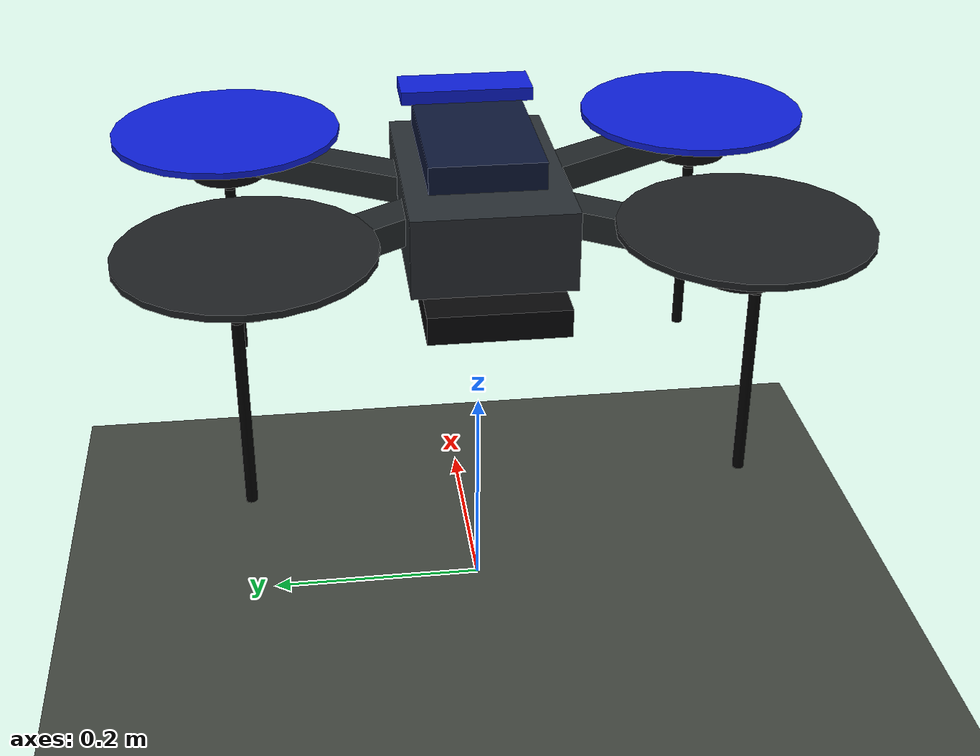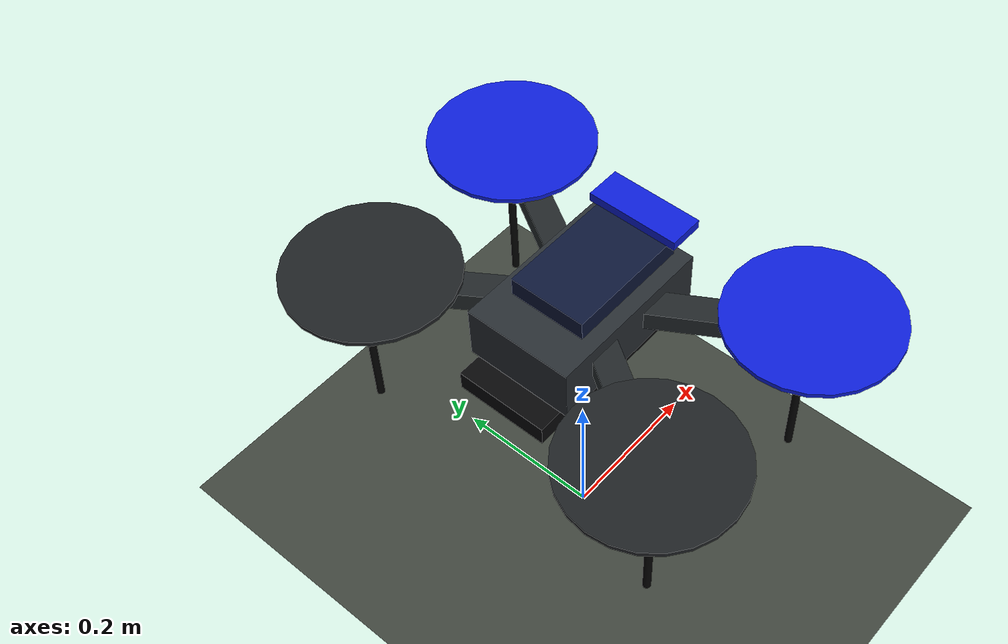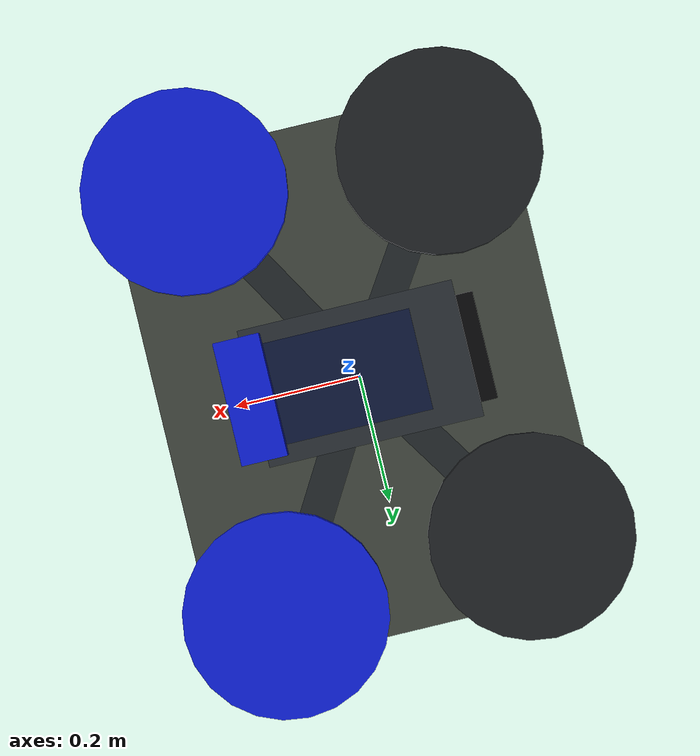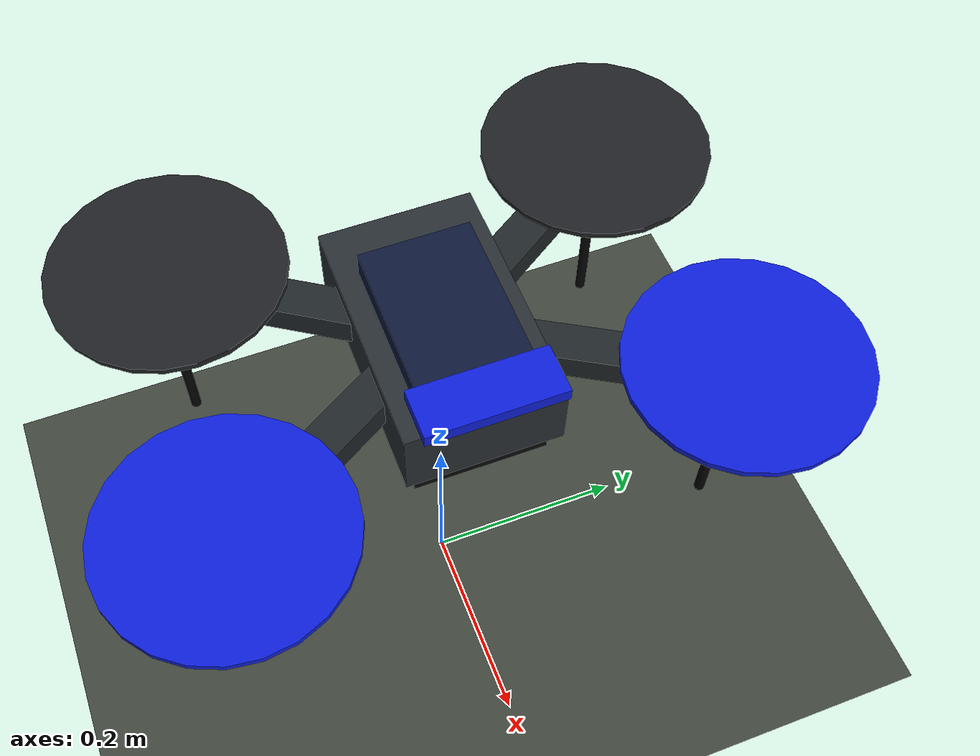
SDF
<?xml version="1.0"?>
<sdf version="1.11">
  <world name="drone_demo">
    <plugin filename="gz-sim-physics-system" name="gz::sim::systems::Physics" />
    <plugin filename="gz-sim-user-commands-system" name="gz::sim::systems::UserCommands" />
    <plugin filename="gz-sim-scene-broadcaster-system" name="gz::sim::systems::SceneBroadcaster" />
    <light name="sun" type="directional">
      <pose relative_to="world">0 0 5 0 0 0</pose>
      <cast_shadows>true</cast_shadows>
      <intensity>0.8</intensity>
      <direction>-0.5 0.1 -0.9</direction>
      <diffuse>0.8 0.8 0.8 1</diffuse>
      <specular>0.2 0.2 0.2 1</specular>
    </light>
    <model name="demo_ground">
      <static>true</static>
      <pose relative_to="world">0 0 0 0 0 0</pose>
      <link name="ground_link">
        <collision name="ground_collision">
          <geometry>
            <plane>
              <normal>0 0 1</normal>
              <size>8.0 6.0</size>
            </plane>
          </geometry>
        </collision>
        <visual name="ground_visual">
          <geometry>
            <plane>
              <normal>0 0 1</normal>
              <size>8.0 6.0</size>
            </plane>
          </geometry>
          <material>
            <ambient>0.25 0.27 0.24 1</ambient>
            <diffuse>0.25 0.27 0.24 1</diffuse>
          </material>
        </visual>
      </link>
    </model>
    <include>
      <name>iris_reference</name>
      <uri>model://iris_with_standoffs</uri>
      <pose relative_to="world">0 0 0.4 0 0 0</pose>
      <static>true</static>
    </include>
  </world>
</sdf>

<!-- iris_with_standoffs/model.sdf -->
<sdf version="1.6">
    <model name="iris">
        <pose>0 0 0.194923 0 0 0</pose>
        <link name="base_link">
            <velocity_decay>
                <linear>0.0</linear>
                <angular>0.0</angular>
            </velocity_decay>
            <inertial>
                <pose>0 0 0 0 0 0</pose>
                <mass>1.5</mass>
                <inertia>
                    <ixx>0.008</ixx>
                    <ixy>0</ixy>
                    <ixz>0</ixz>
                    <iyy>0.015</iyy>
                    <iyz>0</iyz>
                    <izz>0.017</izz>
                </inertia>
            </inertial>
            <collision name="base_link_collision">
                <pose>0 0 -0.08 0 0 0</pose>
                <geometry>
                    <box>
                        <size>0.47 0.47 0.23</size>
                    </box>
                </geometry>
                <surface>
                    <contact>
                        <ode>
                            <max_vel>100.0</max_vel>
                            <min_depth>0.001</min_depth>
                        </ode>
                    </contact>
                    <friction>
                        <ode>
                            <mu>1.0</mu>
                            <mu2>1.0</mu2>
                        </ode>
                    </friction>
                </surface>
            </collision>
            <visual name="body_visual">
                <pose>0 0 0.005 0 0 0</pose>
                <geometry>
                    <box>
                        <size>0.22 0.14 0.07</size>
                    </box>
                </geometry>
                <material>
                    <ambient>0.16 0.18 0.20 1</ambient>
                    <diffuse>0.16 0.18 0.20 1</diffuse>
                    <specular>0.18 0.18 0.18 1</specular>
                </material>
            </visual>
            <visual name="upper_deck_visual">
                <pose>0.02 0 0.052 0 0 0</pose>
                <geometry>
                    <box>
                        <size>0.16 0.10 0.025</size>
                    </box>
                </geometry>
                <material>
                    <ambient>0.05 0.09 0.22 1</ambient>
                    <diffuse>0.05 0.09 0.22 1</diffuse>
                    <specular>0.18 0.18 0.18 1</specular>
                </material>
            </visual>
            <visual name="battery_tray_visual">
                <pose>-0.02 0 -0.044 0 0 0</pose>
                <geometry>
                    <box>
                        <size>0.24 0.12 0.025</size>
                    </box>
                </geometry>
                <material>
                    <ambient>0.03 0.03 0.035 1</ambient>
                    <diffuse>0.03 0.03 0.035 1</diffuse>
                    <specular>0.08 0.08 0.08 1</specular>
                </material>
            </visual>
            <visual name="front_marker_visual">
                <pose>0.108 0 0.07 0 0 0</pose>
                <geometry>
                    <box>
                        <size>0.045 0.12 0.012</size>
                    </box>
                </geometry>
                <material>
                    <ambient>0.05 0.12 0.85 1</ambient>
                    <diffuse>0.05 0.12 0.85 1</diffuse>
                    <specular>0.25 0.25 0.25 1</specular>
                </material>
            </visual>
            <visual name="front_left_arm_visual">
                <pose>0.065 0.11 0.01 0 0 1.0371</pose>
                <geometry>
                    <box>
                        <size>0.30 0.035 0.025</size>
                    </box>
                </geometry>
                <material>
                    <ambient>0.13 0.15 0.16 1</ambient>
                    <diffuse>0.13 0.15 0.16 1</diffuse>
                    <specular>0.12 0.12 0.12 1</specular>
                </material>
            </visual>
            <visual name="front_right_arm_visual">
                <pose>0.065 -0.11 0.01 0 0 -1.0371</pose>
                <geometry>
                    <box>
                        <size>0.30 0.035 0.025</size>
                    </box>
                </geometry>
                <material>
                    <ambient>0.13 0.15 0.16 1</ambient>
                    <diffuse>0.13 0.15 0.16 1</diffuse>
                    <specular>0.12 0.12 0.12 1</specular>
                </material>
            </visual>
            <visual name="rear_left_arm_visual">
                <pose>-0.065 0.10 0.01 0 0 2.1472</pose>
                <geometry>
                    <box>
                        <size>0.29 0.035 0.025</size>
                    </box>
                </geometry>
                <material>
                    <ambient>0.13 0.15 0.16 1</ambient>
                    <diffuse>0.13 0.15 0.16 1</diffuse>
                    <specular>0.12 0.12 0.12 1</specular>
                </material>
            </visual>
            <visual name="rear_right_arm_visual">
                <pose>-0.065 -0.10 0.01 0 0 -2.1472</pose>
                <geometry>
                    <box>
                        <size>0.29 0.035 0.025</size>
                    </box>
                </geometry>
                <material>
                    <ambient>0.13 0.15 0.16 1</ambient>
                    <diffuse>0.13 0.15 0.16 1</diffuse>
                    <specular>0.12 0.12 0.12 1</specular>
                </material>
            </visual>
            <visual name="front_left_leg_visual">
                <pose>0.123 0.22 -0.11 0 0 0</pose>
                <geometry>
                    <cylinder>
                        <radius>0.005</radius>
                        <length>0.17</length>
                    </cylinder>
                </geometry>
                <material>
                    <ambient>0.01 0.01 0.01 1</ambient>
                    <diffuse>0.01 0.01 0.01 1</diffuse>
                    <specular>0.05 0.05 0.05 1</specular>
                </material>
            </visual>
            <visual name="front_right_leg_visual">
                <pose>0.123 -0.22 -0.11 0 0 0</pose>
                <geometry>
                    <cylinder>
                        <radius>0.005</radius>
                        <length>0.17</length>
                    </cylinder>
                </geometry>
                <material>
                    <ambient>0.01 0.01 0.01 1</ambient>
                    <diffuse>0.01 0.01 0.01 1</diffuse>
                    <specular>0.05 0.05 0.05 1</specular>
                </material>
            </visual>
            <visual name="rear_left_leg_visual">
                <pose>-0.140 0.21 -0.11 0 0 0</pose>
                <geometry>
                    <cylinder>
                        <radius>0.005</radius>
                        <length>0.17</length>
                    </cylinder>
                </geometry>
                <material>
                    <ambient>0.01 0.01 0.01 1</ambient>
                    <diffuse>0.01 0.01 0.01 1</diffuse>
                    <specular>0.05 0.05 0.05 1</specular>
                </material>
            </visual>
            <visual name="rear_right_leg_visual">
                <pose>-0.140 -0.21 -0.11 0 0 0</pose>
                <geometry>
                    <cylinder>
                        <radius>0.005</radius>
                        <length>0.17</length>
                    </cylinder>
                </geometry>
                <material>
                    <ambient>0.01 0.01 0.01 1</ambient>
                    <diffuse>0.01 0.01 0.01 1</diffuse>
                    <specular>0.05 0.05 0.05 1</specular>
                </material>
            </visual>
        </link>
        <link name="iris/ground_truth/odometry_sensorgt_link">
            <pose>0 0 0 0 -0 0</pose>
            <inertial>
                <pose>0 0 0 0 -0 0</pose>
                <mass>0.15</mass>
                <inertia>
                    <ixx>0.0001</ixx>
                    <ixy>0</ixy>
                    <ixz>0</ixz>
                    <iyy>0.0002</iyy>
                    <iyz>0</iyz>
                    <izz>0.0002</izz>
                </inertia>
            </inertial>
        </link>
        <joint name="iris/ground_truth/odometry_sensorgt_joint" type="revolute">
            <child>iris/ground_truth/odometry_sensorgt_link</child>
            <parent>base_link</parent>
            <axis>
                <xyz>0 0 1</xyz>
                <limit>
                    <lower>0</lower>
                    <upper>0</upper>
                    <effort>0</effort>
                    <velocity>0</velocity>
                </limit>
                <dynamics>
                    <damping>1.0</damping>
                </dynamics>
                <use_parent_model_frame>1</use_parent_model_frame>
            </axis>
            <physics>
                <ode>
                    <implicit_spring_damper>1</implicit_spring_damper>
                </ode>
            </physics>
        </joint>
        <link name="iris/imu_link">
            <inertial>
                <pose>0 0 0 0 0 0</pose>
                <mass>0.15</mass>
                <inertia>
                    <ixx>0.00001</ixx>
                    <ixy>0</ixy>
                    <ixz>0</ixz>
                    <iyy>0.00002</iyy>
                    <iyz>0</iyz>
                    <izz>0.00002</izz>
                </inertia>
            </inertial>
            <sensor name="imu_sensor" type="imu">
                <pose>0 0 0 3.141593 0 0</pose>
                <always_on>1</always_on>
                <update_rate>1000.0</update_rate>
            </sensor>
        </link>
        <joint name="iris/imu_joint" type="revolute">
            <child>iris/imu_link</child>
            <parent>base_link</parent>
            <axis>
                <xyz>0 0 1</xyz>
                <limit>
                    <lower>0</lower>
                    <upper>0</upper>
                    <effort>0</effort>
                    <velocity>0</velocity>
                </limit>
                <dynamics>
                    <damping>1.0</damping>
                </dynamics>
                <use_parent_model_frame>1</use_parent_model_frame>
            </axis>
            <physics>
                <ode>
                    <implicit_spring_damper>1</implicit_spring_damper>
                </ode>
            </physics>
        </joint>
        <link name="rotor_0">
            <pose>0.13 -0.22 0.023 0 -0 0</pose>
            <inertial>
                <pose>0 0 0 0 -0 0</pose>
                <mass>0.025</mass>
                <inertia>
                    <ixx>9.75e-06</ixx>
                    <ixy>0</ixy>
                    <ixz>0</ixz>
                    <iyy>0.000166704</iyy>
                    <iyz>0</iyz>
                    <izz>0.000167604</izz>
                </inertia>
            </inertial>
            <collision name="rotor_0_collision">
                <pose>0 0 0 0 -0 0</pose>
                <geometry>
                    <cylinder>
                        <length>0.005</length>
                        <radius>0.1</radius>
                    </cylinder>
                </geometry>
                <surface>
                    <contact>
                        <ode/>
                    </contact>
                    <friction>
                        <ode/>
                    </friction>
                </surface>
            </collision>
            <visual name="rotor_0_motor_visual">
                <pose>0 0 -0.018 0 0 0</pose>
                <geometry>
                    <cylinder>
                        <radius>0.035</radius>
                        <length>0.035</length>
                    </cylinder>
                </geometry>
                <material>
                    <ambient>0.05 0.05 0.055 1</ambient>
                    <diffuse>0.05 0.05 0.055 1</diffuse>
                    <specular>0.12 0.12 0.12 1</specular>
                </material>
            </visual>
            <visual name="rotor_0_prop_visual">
                <pose>0 0 0.006 0 0 0</pose>
                <geometry>
                    <cylinder>
                        <radius>0.105</radius>
                        <length>0.006</length>
                    </cylinder>
                </geometry>
                <material>
                    <ambient>0.05 0.12 0.85 1</ambient>
                    <diffuse>0.05 0.12 0.85 1</diffuse>
                    <specular>0.22 0.22 0.22 1</specular>
                </material>
            </visual>
            <gravity>1</gravity>
            <velocity_decay/>
            <self_collide>0</self_collide>
        </link>
        <joint name="rotor_0_joint" type="revolute">
            <child>rotor_0</child>
            <parent>base_link</parent>
            <axis>
                <xyz>0 0 1</xyz>
                <limit>
                    <lower>-1e+16</lower>
                    <upper>1e+16</upper>
                </limit>
                <dynamics>
                    <damping>0.004</damping>
                </dynamics>
                <use_parent_model_frame>1</use_parent_model_frame>
            </axis>
            <physics>
                <ode>
                    <implicit_spring_damper>1</implicit_spring_damper>
                </ode>
            </physics>
        </joint>
        <link name="rotor_1">
            <pose>-0.13 0.2 0.023 0 -0 0</pose>
            <inertial>
                <pose>0 0 0 0 -0 0</pose>
                <mass>0.025</mass>
                <inertia>
                    <ixx>9.75e-06</ixx>
                    <ixy>0</ixy>
                    <ixz>0</ixz>
                    <iyy>0.000166704</iyy>
                    <iyz>0</iyz>
                    <izz>0.000167604</izz>
                </inertia>
            </inertial>
            <collision name="rotor_1_collision">
                <pose>0 0 0 0 -0 0</pose>
                <geometry>
                    <cylinder>
                        <length>0.005</length>
                        <radius>0.1</radius>
                    </cylinder>
                </geometry>
                <surface>
                    <contact>
                        <ode/>
                    </contact>
                    <friction>
                        <ode/>
                    </friction>
                </surface>
            </collision>
            <visual name="rotor_1_motor_visual">
                <pose>0 0 -0.018 0 0 0</pose>
                <geometry>
                    <cylinder>
                        <radius>0.035</radius>
                        <length>0.035</length>
                    </cylinder>
                </geometry>
                <material>
                    <ambient>0.05 0.05 0.055 1</ambient>
                    <diffuse>0.05 0.05 0.055 1</diffuse>
                    <specular>0.12 0.12 0.12 1</specular>
                </material>
            </visual>
            <visual name="rotor_1_prop_visual">
                <pose>0 0 0.006 0 0 0</pose>
                <geometry>
                    <cylinder>
                        <radius>0.105</radius>
                        <length>0.006</length>
                    </cylinder>
                </geometry>
                <material>
                    <ambient>0.12 0.13 0.14 1</ambient>
                    <diffuse>0.12 0.13 0.14 1</diffuse>
                    <specular>0.18 0.18 0.18 1</specular>
                </material>
            </visual>
            <gravity>1</gravity>
            <velocity_decay/>
            <self_collide>0</self_collide>
        </link>
        <joint name="rotor_1_joint" type="revolute">
            <child>rotor_1</child>
            <parent>base_link</parent>
            <axis>
                <xyz>0 0 1</xyz>
                <limit>
                    <lower>-1e+16</lower>
                    <upper>1e+16</upper>
                </limit>
                <dynamics>
                    <damping>0.004</damping>
                </dynamics>
                <use_parent_model_frame>1</use_parent_model_frame>
            </axis>
            <physics>
                <ode>
                    <implicit_spring_damper>1</implicit_spring_damper>
                </ode>
            </physics>
        </joint>
        <link name="rotor_2">
            <pose>0.13 0.22 0.023 0 -0 0</pose>
            <inertial>
                <pose>0 0 0 0 -0 0</pose>
                <mass>0.025</mass>
                <inertia>
                    <ixx>9.75e-06</ixx>
                    <ixy>0</ixy>
                    <ixz>0</ixz>
                    <iyy>0.000166704</iyy>
                    <iyz>0</iyz>
                    <izz>0.000167604</izz>
                </inertia>
            </inertial>
            <collision name="rotor_2_collision">
                <pose>0 0 0 0 -0 0</pose>
                <geometry>
                    <cylinder>
                        <length>0.005</length>
                        <radius>0.1</radius>
                    </cylinder>
                </geometry>
                <surface>
                    <contact>
                        <ode/>
                    </contact>
                    <friction>
                        <ode/>
                    </friction>
                </surface>
            </collision>
            <visual name="rotor_2_motor_visual">
                <pose>0 0 -0.018 0 0 0</pose>
                <geometry>
                    <cylinder>
                        <radius>0.035</radius>
                        <length>0.035</length>
                    </cylinder>
                </geometry>
                <material>
                    <ambient>0.05 0.05 0.055 1</ambient>
                    <diffuse>0.05 0.05 0.055 1</diffuse>
                    <specular>0.12 0.12 0.12 1</specular>
                </material>
            </visual>
            <visual name="rotor_2_prop_visual">
                <pose>0 0 0.006 0 0 0</pose>
                <geometry>
                    <cylinder>
                        <radius>0.105</radius>
                        <length>0.006</length>
                    </cylinder>
                </geometry>
                <material>
                    <ambient>0.05 0.12 0.85 1</ambient>
                    <diffuse>0.05 0.12 0.85 1</diffuse>
                    <specular>0.22 0.22 0.22 1</specular>
                </material>
            </visual>
            <gravity>1</gravity>
            <velocity_decay/>
            <self_collide>0</self_collide>
        </link>
        <joint name="rotor_2_joint" type="revolute">
            <child>rotor_2</child>
            <parent>base_link</parent>
            <axis>
                <xyz>0 0 1</xyz>
                <limit>
                    <lower>-1e+16</lower>
                    <upper>1e+16</upper>
                </limit>
                <dynamics>
                    <damping>0.004</damping>
                </dynamics>
                <use_parent_model_frame>1</use_parent_model_frame>
            </axis>
            <physics>
                <ode>
                    <implicit_spring_damper>1</implicit_spring_damper>
                </ode>
            </physics>
        </joint>
        <link name="rotor_3">
            <pose>-0.13 -0.2 0.023 0 -0 0</pose>
            <inertial>
                <pose>0 0 0 0 -0 0</pose>
                <mass>0.025</mass>
                <inertia>
                    <ixx>9.75e-06</ixx>
                    <ixy>0</ixy>
                    <ixz>0</ixz>
                    <iyy>0.000166704</iyy>
                    <iyz>0</iyz>
                    <izz>0.000167604</izz>
                </inertia>
            </inertial>
            <collision name="rotor_3_collision">
                <pose>0 0 0 0 -0 0</pose>
                <geometry>
                    <cylinder>
                        <length>0.005</length>
                        <radius>0.1</radius>
                    </cylinder>
                </geometry>
                <surface>
                    <contact>
                        <ode/>
                    </contact>
                    <friction>
                        <ode/>
                    </friction>
                </surface>
            </collision>
            <visual name="rotor_3_motor_visual">
                <pose>0 0 -0.018 0 0 0</pose>
                <geometry>
                    <cylinder>
                        <radius>0.035</radius>
                        <length>0.035</length>
                    </cylinder>
                </geometry>
                <material>
                    <ambient>0.05 0.05 0.055 1</ambient>
                    <diffuse>0.05 0.05 0.055 1</diffuse>
                    <specular>0.12 0.12 0.12 1</specular>
                </material>
            </visual>
            <visual name="rotor_3_prop_visual">
                <pose>0 0 0.006 0 0 0</pose>
                <geometry>
                    <cylinder>
                        <radius>0.105</radius>
                        <length>0.006</length>
                    </cylinder>
                </geometry>
                <material>
                    <ambient>0.12 0.13 0.14 1</ambient>
                    <diffuse>0.12 0.13 0.14 1</diffuse>
                    <specular>0.18 0.18 0.18 1</specular>
                </material>
            </visual>
            <gravity>1</gravity>
            <velocity_decay/>
            <self_collide>0</self_collide>
        </link>
        <joint name="rotor_3_joint" type="revolute">
            <child>rotor_3</child>
            <parent>base_link</parent>
            <axis>
                <xyz>0 0 1</xyz>
                <limit>
                    <lower>-1e+16</lower>
                    <upper>1e+16</upper>
                </limit>
                <dynamics>
                    <damping>0.004</damping>
                </dynamics>
                <use_parent_model_frame>1</use_parent_model_frame>
            </axis>
            <physics>
                <ode>
                    <implicit_spring_damper>1</implicit_spring_damper>
                </ode>
            </physics>
        </joint>
        <static>0</static>
    </model>
</sdf>
